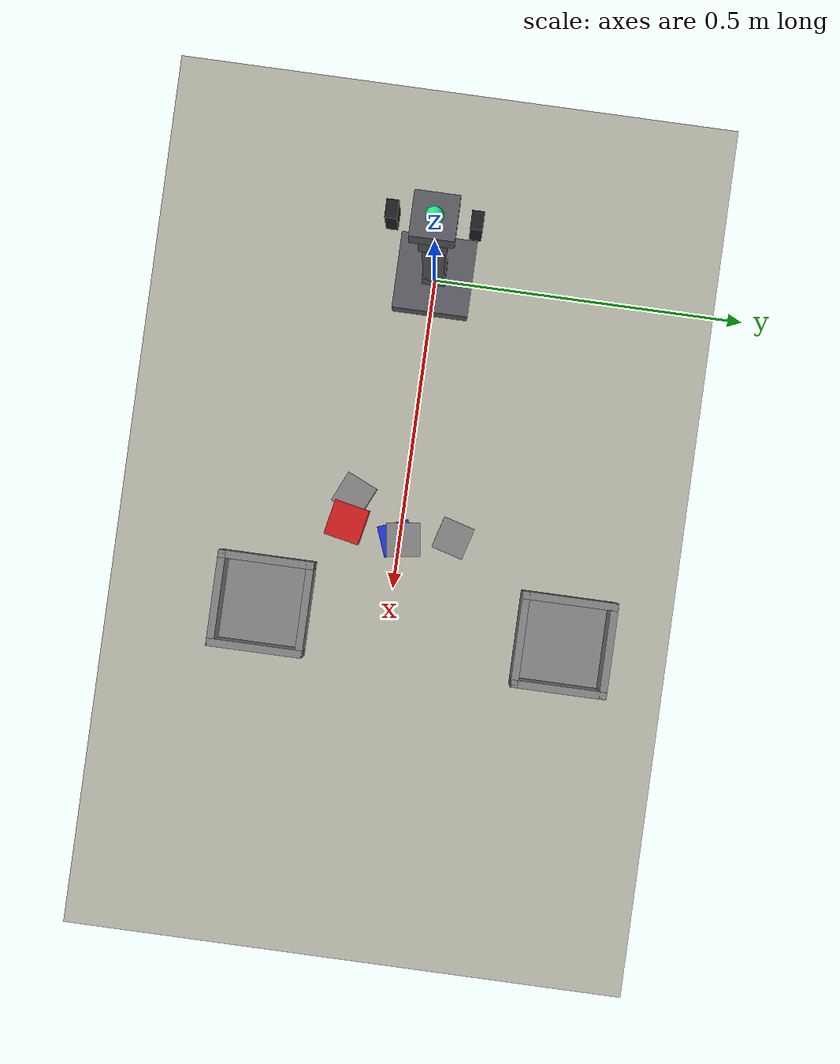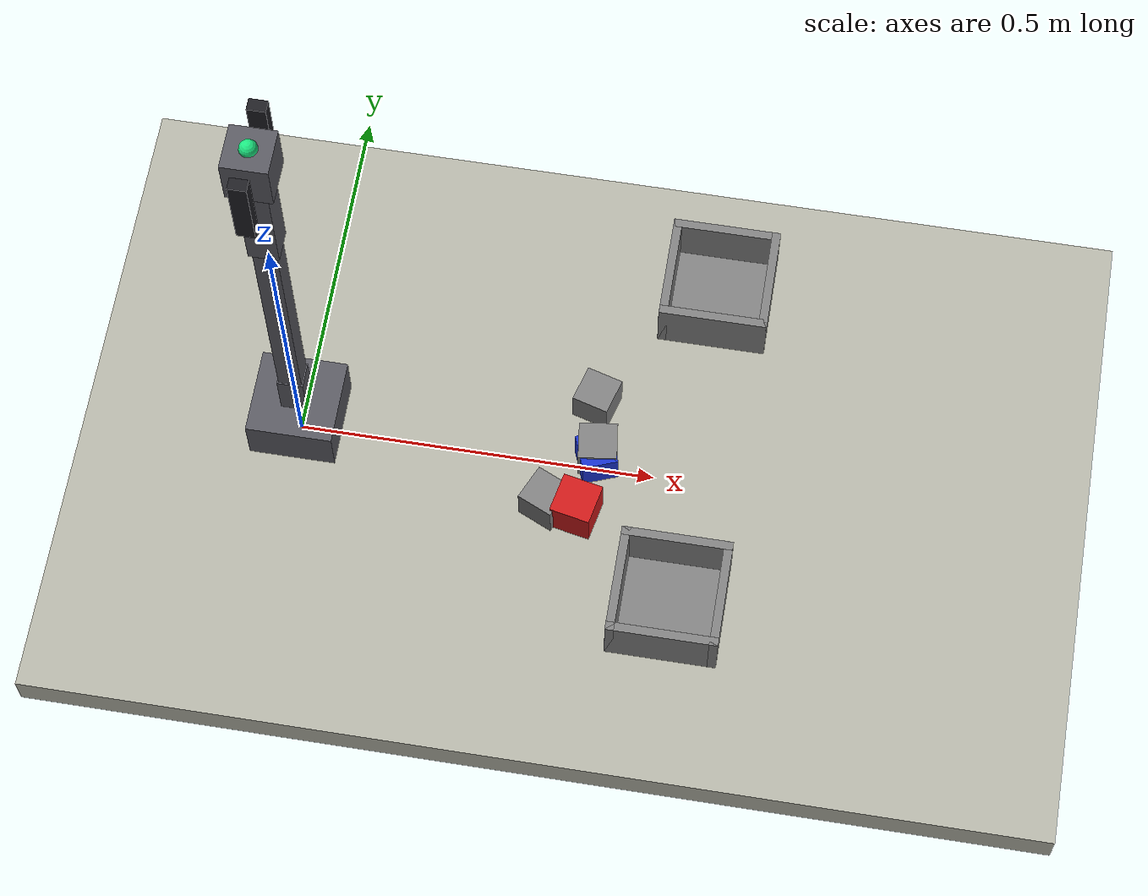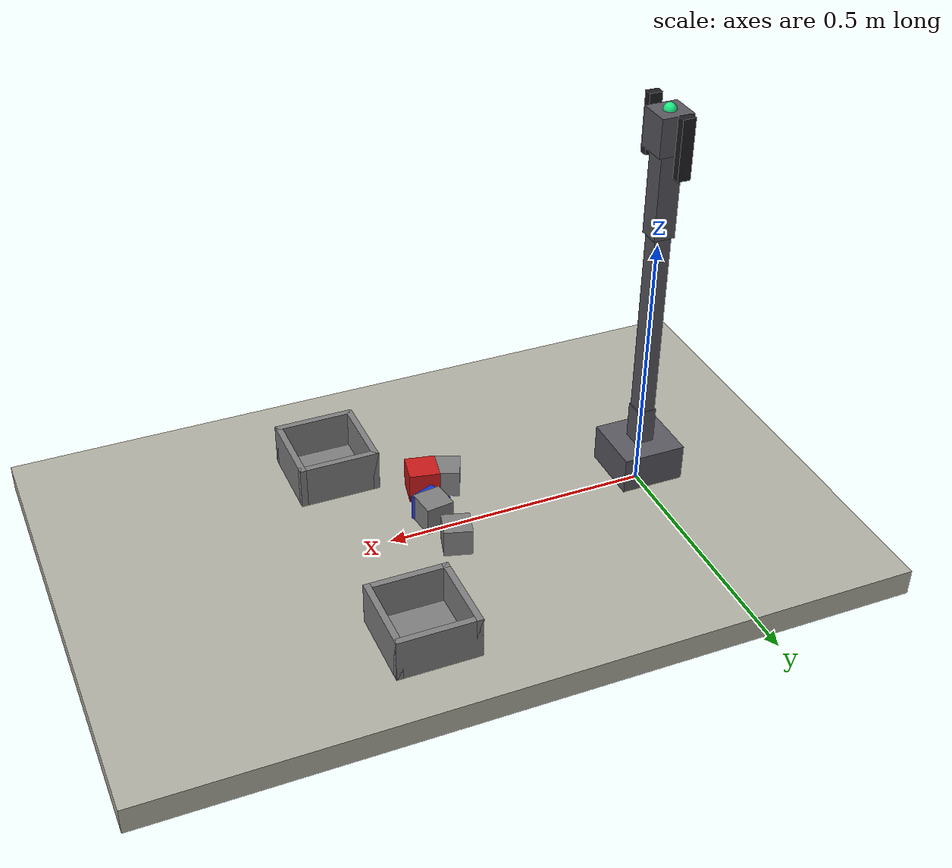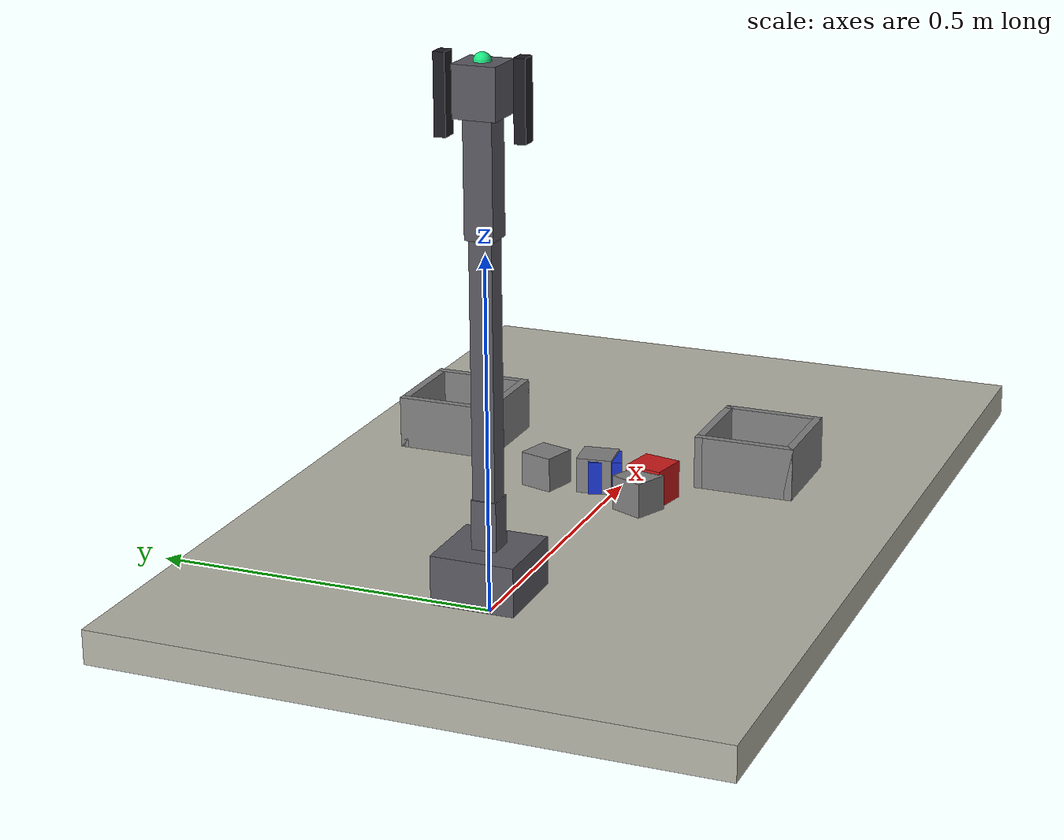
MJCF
<mujoco model="Autonomous reference tabletop arm scene_task_req_a_tabletop_robot_arm_that_sorts_red_and_blue_blo_edge_case_000">
  <compiler angle="radian" coordinate="local" />
  <option timestep="0.002" gravity="0 0 -9.81" />
  <!-- scene_set_id=scenes_task_req_a_tabletop_robot_arm_that_sorts_red_and_blue_blo_edge_case scene_id=scene_task_req_a_tabletop_robot_arm_that_sorts_red_and_blue_blo_edge_case_000 -->
  <default>
    <joint damping="0.8" armature="0.01" />
    <geom friction="1 0.1 0.01" />
  </default>
  <asset>
    <material name="mat_red" rgba="0.8 0.1 0.1 1" />
    <material name="mat_blue" rgba="0.1 0.2 0.8 1" />
    <material name="mat_gray" rgba="0.5 0.5 0.5 1" />
    <material name="mat_link" rgba="0.35 0.35 0.38 1" />
  </asset>
  <worldbody>
    <light name="key" pos="0 0 2" dir="0 0 -1" />
    <geom name="table" type="box" size="0.7 0.45 0.025" pos="0.4 0 0" rgba="0.7 0.7 0.65 1" />
    <body name="base_link" pos="0.0 0.0 0.025">
      <geom name="base_link_geom" type="box" size="0.06 0.06 0.035" pos="0 0 0.035" mass="0.45" material="mat_link" />
      <body name="upper_link" pos="0.0 0.0 0.07">
        <joint name="base_yaw" type="hinge" axis="0.0 0.0 1.0" pos="0 0 0" limited="true" range="-3.14 3.14" />
        <geom name="upper_link_geom" type="box" size="0.018 0.018 0.035" pos="0 0 0.035" mass="0.22" material="mat_link" />
        <body name="forearm_link" pos="0.0 0.0 0.07">
          <joint name="shoulder_pitch" type="hinge" axis="0.0 1.0 0.0" pos="0 0 0" limited="true" range="-1.57 1.57" />
          <geom name="forearm_link_geom" type="box" size="0.016 0.016 0.1785" pos="0 0 0.1785" mass="0.18" material="mat_link" />
          <body name="wrist_link" pos="0.0 0.0 0.357">
            <joint name="elbow_pitch" type="hinge" axis="0.0 1.0 0.0" pos="0 0 0" limited="true" range="-1.57 1.57" />
            <geom name="wrist_link_geom" type="box" size="0.02 0.02 0.08" pos="0 0 0.08" mass="0.035" material="mat_link" />
            <camera name="wrist_rgbd_camera" pos="0.03 0.0 0.04" xyaxes="0 -1 0 0 0 1" mode="fixed" user="0.0 0.0 0.0" />
            <body name="gripper_link" pos="0.0 0.0 0.16">
              <geom name="gripper_link_geom" type="box" size="0.03 0.03 0.035" pos="0 0 0.035" mass="0.04" material="mat_link" />
              <site name="ee_site" pos="0 0 0.07" size="0.012" rgba="0.1 0.9 0.5 1" />
              <site name="grasp_site" pos="0 0 0.015" size="0.01" rgba="1 0.7 0.1 1" />
              <body name="left_gripper_finger" pos="0 0.055 0.07">
                <joint name="left_gripper_slide" type="slide" axis="0 -1 0" limited="true" range="0 0.04" damping="2.0" />
                <geom name="left_gripper_pad" type="box" size="0.012 0.008 0.055" pos="0 0 -0.045" mass="0.025" rgba="0.12 0.12 0.14 1" friction="1.5 0.1 0.01" />
              </body>
              <body name="right_gripper_finger" pos="0 -0.055 0.07">
                <joint name="right_gripper_slide" type="slide" axis="0 1 0" limited="true" range="0 0.04" damping="2.0" />
                <geom name="right_gripper_pad" type="box" size="0.012 0.008 0.055" pos="0 0 -0.045" mass="0.025" rgba="0.12 0.12 0.14 1" friction="1.5 0.1 0.01" />
              </body>
            </body>
          </body>
        </body>
      </body>
    </body>
    <body name="obj_red_block" pos="0.4048 -0.085 0.0544" euler="0 0 -0.1997">
      <freejoint name="free_red_block" />
      <geom name="red_block" type="box" size="0.0284 0.0284 0.0284" mass="0.0564" friction="0.893 0.1 0.01" material="mat_red" />
    </body>
    <body name="obj_blue_block" pos="0.42 -0.0041 0.051" euler="0 0 -1.2037">
      <freejoint name="free_blue_block" />
      <geom name="blue_block" type="box" size="0.025 0.025 0.025" mass="0.0475" friction="1.29 0.1 0.01" material="mat_blue" />
    </body>
    <geom name="red_bin" type="box" size="0.07 0.07 0.004" pos="0.55 -0.2013 0.029" material="mat_gray" />
    <geom name="red_bin_wall_px" type="box" size="0.006 0.07600000000000001 0.04" pos="0.62 -0.2013 0.065" material="mat_gray" />
    <geom name="red_bin_wall_nx" type="box" size="0.006 0.07600000000000001 0.04" pos="0.48 -0.2013 0.065" material="mat_gray" />
    <geom name="red_bin_wall_py" type="box" size="0.07600000000000001 0.006 0.04" pos="0.55 -0.1313 0.065" material="mat_gray" />
    <geom name="red_bin_wall_ny" type="box" size="0.07600000000000001 0.006 0.04" pos="0.55 -0.2713 0.065" material="mat_gray" />
    <geom name="blue_bin" type="box" size="0.07 0.07 0.004" pos="0.55 0.2807 0.029" material="mat_gray" />
    <geom name="blue_bin_wall_px" type="box" size="0.006 0.07600000000000001 0.04" pos="0.62 0.2807 0.065" material="mat_gray" />
    <geom name="blue_bin_wall_nx" type="box" size="0.006 0.07600000000000001 0.04" pos="0.48 0.2807 0.065" material="mat_gray" />
    <geom name="blue_bin_wall_py" type="box" size="0.07600000000000001 0.006 0.04" pos="0.55 0.3507 0.065" material="mat_gray" />
    <geom name="blue_bin_wall_ny" type="box" size="0.07600000000000001 0.006 0.04" pos="0.55 0.2107 0.065" material="mat_gray" />
    <body name="obj_distractor_0_0" pos="0.407 0.085 0.0519" euler="0 0 -0.2754">
      <freejoint name="free_distractor_0_0" />
      <geom name="distractor_0_0" type="box" size="0.0259 0.0259 0.0259" mass="0.0655" friction="0.915 0.1 0.01" material="mat_gray" />
    </body>
    <body name="obj_distractor_0_1" pos="0.4199 0.0072 0.0527" euler="0 0 0.1267">
      <freejoint name="free_distractor_0_1" />
      <geom name="distractor_0_1" type="box" size="0.0267 0.0267 0.0267" mass="0.0409" friction="1.295 0.1 0.01" material="mat_gray" />
    </body>
    <body name="obj_distractor_0_2" pos="0.36 -0.0794 0.0522" euler="0 0 -0.4199">
      <freejoint name="free_distractor_0_2" />
      <geom name="distractor_0_2" type="box" size="0.0262 0.0262 0.0262" mass="0.0598" friction="1.247 0.1 0.01" material="mat_gray" />
    </body>
  </worldbody>
  <actuator>
    <motor name="base_yaw_motor" joint="base_yaw" gear="1" forcerange="-12.0 12.0" />
    <motor name="shoulder_pitch_motor" joint="shoulder_pitch" gear="1" forcerange="-12.0 12.0" />
    <motor name="elbow_pitch_motor" joint="elbow_pitch" gear="1" forcerange="-12.0 12.0" />
    <motor name="left_gripper_slide_motor" joint="left_gripper_slide" gear="1" forcerange="-25 25" />
    <motor name="right_gripper_slide_motor" joint="right_gripper_slide" gear="1" forcerange="-25 25" />
  </actuator>
  <sensor>
    <framepos name="wrist_rgbd_camera_pose" objtype="camera" objname="wrist_rgbd_camera" />
    <framequat name="wrist_rgbd_camera_orientation" objtype="camera" objname="wrist_rgbd_camera" />
  </sensor>
</mujoco>
